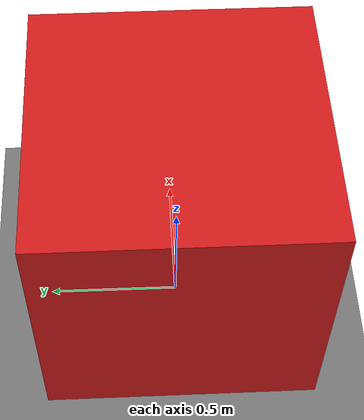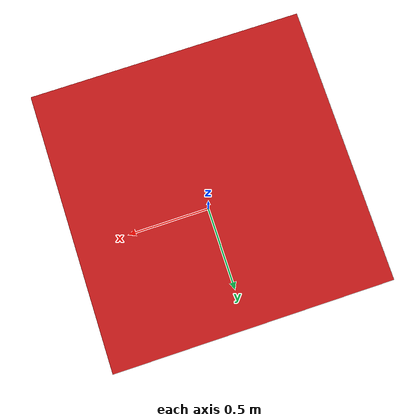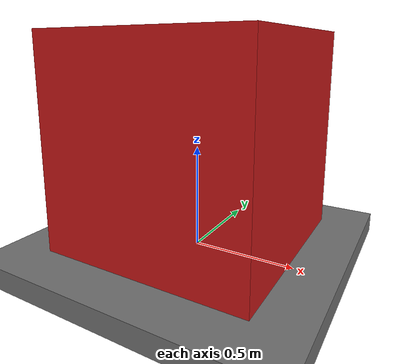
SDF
<?xml version="1.0"?>

<sdf version="1.9">
    <world name="mundo_prueba">

        <!-- Sistemas básicos de Gazebo -->
        <plugin
            filename="gz-sim-physics-system"
            name="gz::sim::systems::Physics"/>

        <plugin
            filename="gz-sim-user-commands-system"
            name="gz::sim::systems::UserCommands"/>

        <plugin
            filename="gz-sim-scene-broadcaster-system"
            name="gz::sim::systems::SceneBroadcaster"/>

        <!-- Luz principal -->
        <light type="directional" name="sol">
            <cast_shadows>true</cast_shadows>
            <pose>0 0 10 0 0 0</pose>
            <diffuse>0.8 0.8 0.8 1</diffuse>
            <specular>0.2 0.2 0.2 1</specular>
            <direction>-0.5 0.1 -0.9</direction>
        </light>

        <!-- Suelo -->
        <model name="suelo">
            <static>true</static>

            <link name="link">

                <collision name="collision">
                    <geometry>
                        <box>
                            <size>20 20 0.1</size>
                        </box>
                    </geometry>
                </collision>

                <visual name="visual">
                    <geometry>
                        <box>
                            <size>20 20 0.1</size>
                        </box>
                    </geometry>

                    <material>
                        <ambient>0.25 0.25 0.25 1</ambient>
                        <diffuse>0.45 0.45 0.45 1</diffuse>
                    </material>
                </visual>

            </link>
        </model>

        <!-- Cubo de prueba -->
        <model name="cubo_prueba">
            <pose>0 0 0.55 0 0 0</pose>

            <link name="link">

                <collision name="collision">
                    <geometry>
                        <box>
                            <size>1 1 1</size>
                        </box>
                    </geometry>
                </collision>

                <visual name="visual">
                    <geometry>
                        <box>
                            <size>1 1 1</size>
                        </box>
                    </geometry>

                    <material>
                        <ambient>0.8 0.1 0.1 1</ambient>
                        <diffuse>0.8 0.1 0.1 1</diffuse>
                    </material>
                </visual>

            </link>
        </model>

    </world>
</sdf>
